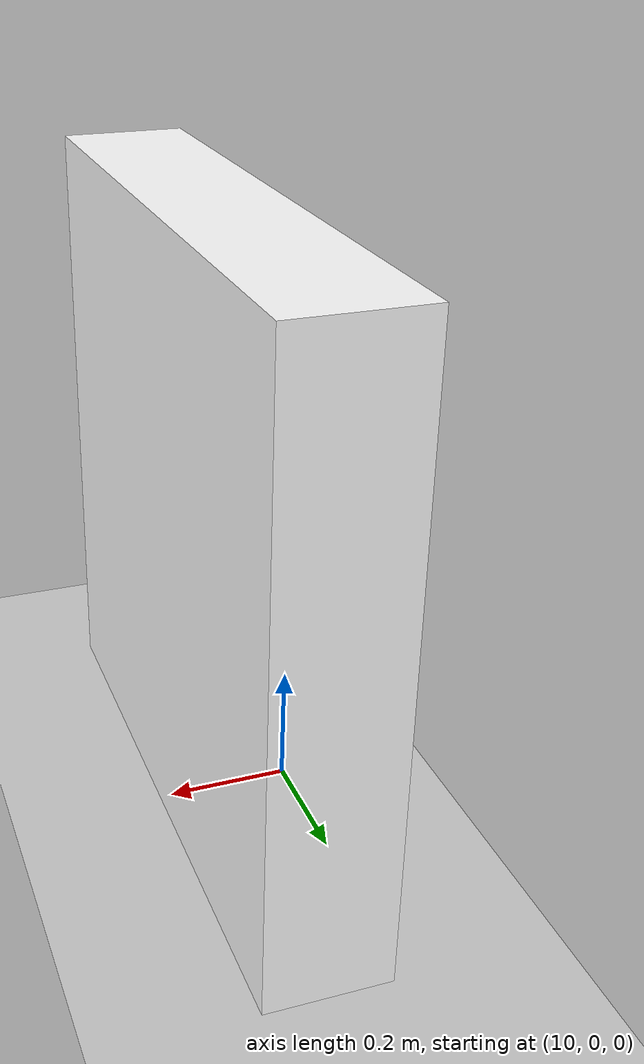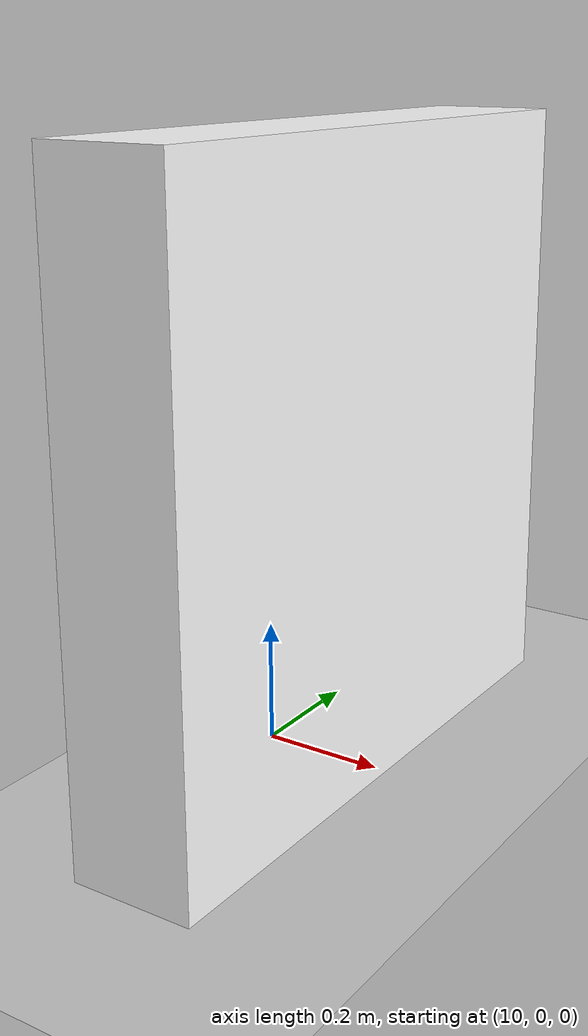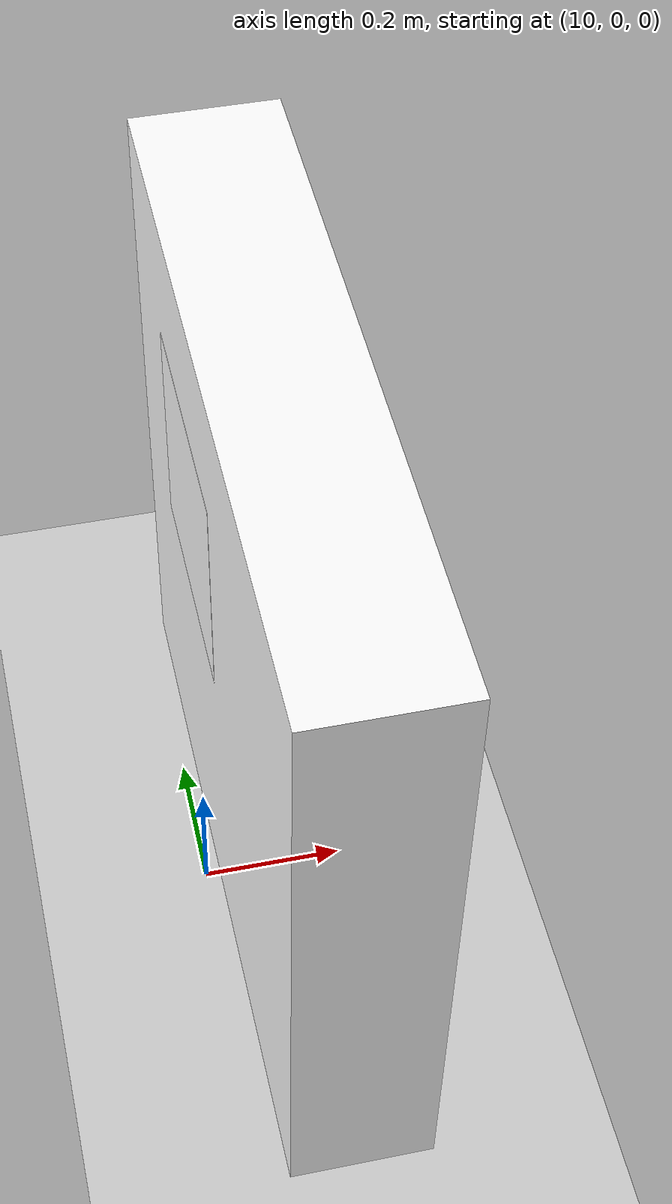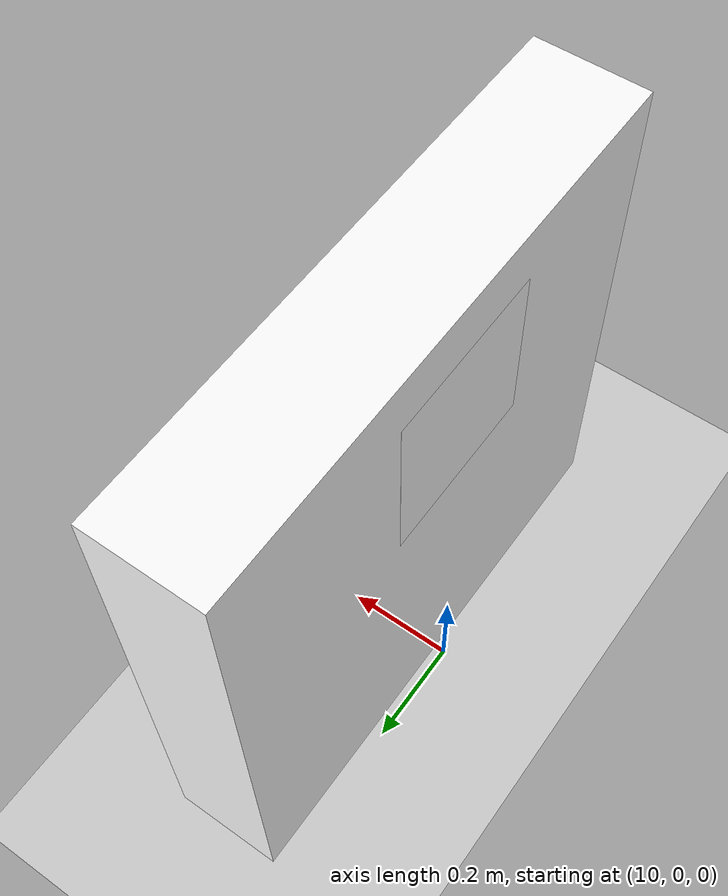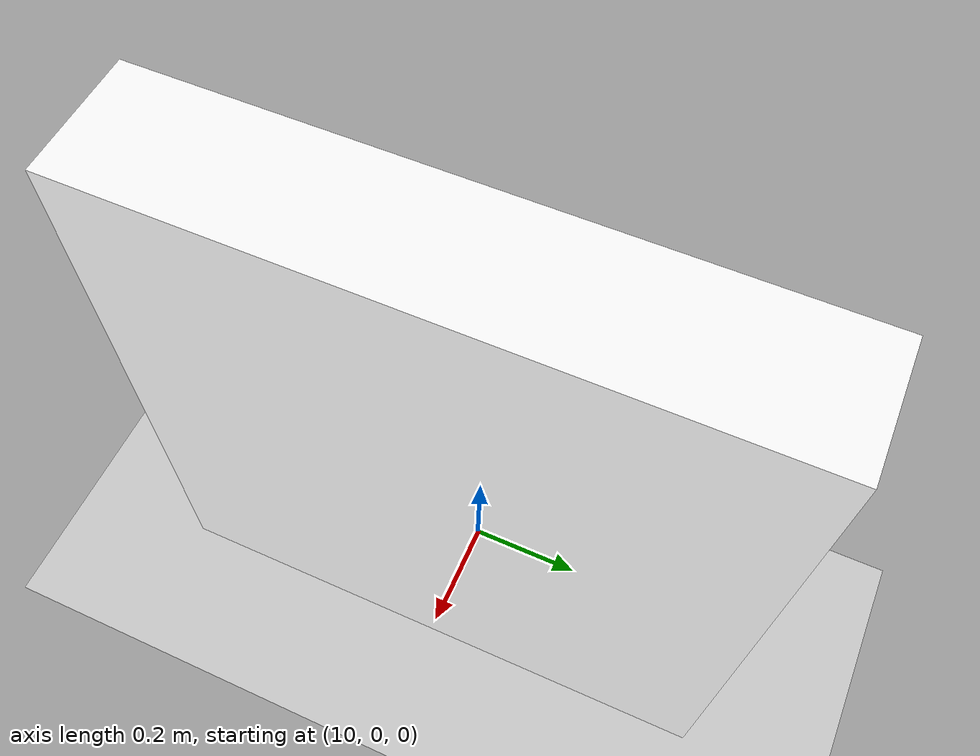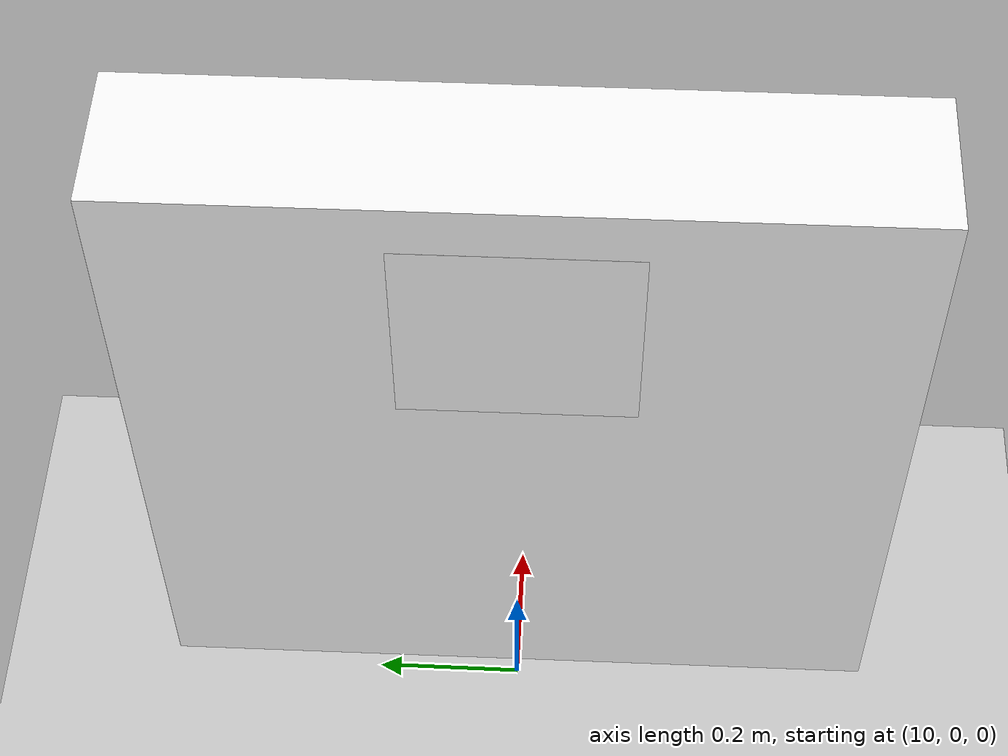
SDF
<?xml version="1.0" ?>

<sdf version="1.6">
  <world name="docking_world">

    <!-- Set the coordinates for the world origin -->
    <spherical_coordinates>
      <surface_model>EARTH_WGS84</surface_model>
      <world_frame_orientation>ENU</world_frame_orientation>
      <latitude_deg>52.2184</latitude_deg>
      <longitude_deg>6.8753</longitude_deg>
      <elevation>0</elevation>
      <heading_deg>0</heading_deg>
    </spherical_coordinates>

    <physics name="1ms" type="ignored">
      <max_step_size>0.001</max_step_size>
      <real_time_factor>1.0</real_time_factor>
    </physics>
    <plugin
      filename="ignition-gazebo-physics-system"
      name="ignition::gazebo::systems::Physics">
    </plugin>
    <plugin
      filename="ignition-gazebo-user-commands-system"
      name="ignition::gazebo::systems::UserCommands">
    </plugin>
    <plugin
      filename="ignition-gazebo-scene-broadcaster-system"
      name="ignition::gazebo::systems::SceneBroadcaster">
    </plugin>
    <plugin
      filename="ignition-gazebo-contact-system"
      name="ignition::gazebo::systems::Contact">
    </plugin>

    <light type="directional" name="sun">
      <cast_shadows>true</cast_shadows>
      <pose>0 0 10 0 0 0</pose>
      <diffuse>0.8 0.8 0.8 1</diffuse>
      <specular>0.2 0.2 0.2 1</specular>
      <attenuation>
        <range>1000</range>
        <constant>0.9</constant>
        <linear>0.01</linear>
        <quadratic>0.001</quadratic>
      </attenuation>
      <direction>-0.5 0.1 -0.9</direction>
    </light>

    <!-- Ground plane -->
    <model name="ground_plane">
      <static>true</static>
      <link name="link">
        <collision name="collision">
          <geometry>
            <plane>
              <normal>0 0 1</normal>
              <size>100 100</size>
            </plane>
          </geometry>
        </collision>
        <visual name="visual">
          <geometry>
            <plane>
              <normal>0 0 1</normal>
              <size>100 100</size>
            </plane>
          </geometry>
          <material>
            <ambient>0.8 0.8 0.8 1</ambient>
            <diffuse>0.8 0.8 0.8 1</diffuse>
            <specular>0.8 0.8 0.8 1</specular>
          </material>
        </visual>
      </link>
    </model>

    <!-- Docking station -->
    <model name="docking_station">
      <static>true</static>
      <pose>10.12 0 0.5 0 0 0</pose>
      <link name="tag_link">
        <collision name="docking_station_collision">
          <geometry>
            <box>
              <size>0.2 1.0 1.0</size>
            </box>
          </geometry>
        </collision>
        <visual name="docking_station_visual">
          <geometry>
            <box>
              <size>0.2 1.0 1.0</size>
            </box>
          </geometry>
          <material>
            <ambient>1 1 1 1</ambient>
            <diffuse>1 1 1 1</diffuse>
            <specular>1 1 1 1</specular>
          </material>
        </visual>
      </link>
    </model>

    <!-- Docking tag -->
    <model name="tag_plane">
      <static>true</static>
      <pose>10 0 0.8 0 0 0</pose>
      <link name="tag_link">
        <visual name="tag_visual">
          <geometry>
            <plane>
              <normal>-1 0 0</normal>
              <size>0.3 0.3</size>
            </plane>
          </geometry>
          <material>
            <ambient>1 1 1 1</ambient>
            <diffuse>1 1 1 1</diffuse>
            <specular>0.8 0.8 1</specular>
            <pbr>
              <metal>
                <albedo_map>marker.jpeg</albedo_map>
                <normal_map>marker.jpeg</normal_map>
              </metal>
            </pbr>
          </material>
        </visual>
      </link>
    </model>

  </world>
</sdf>
